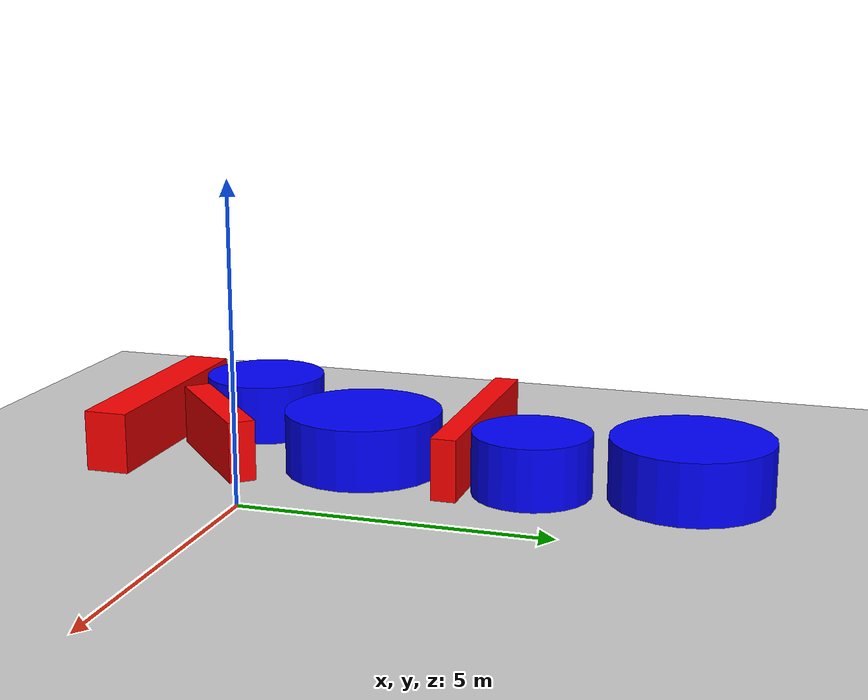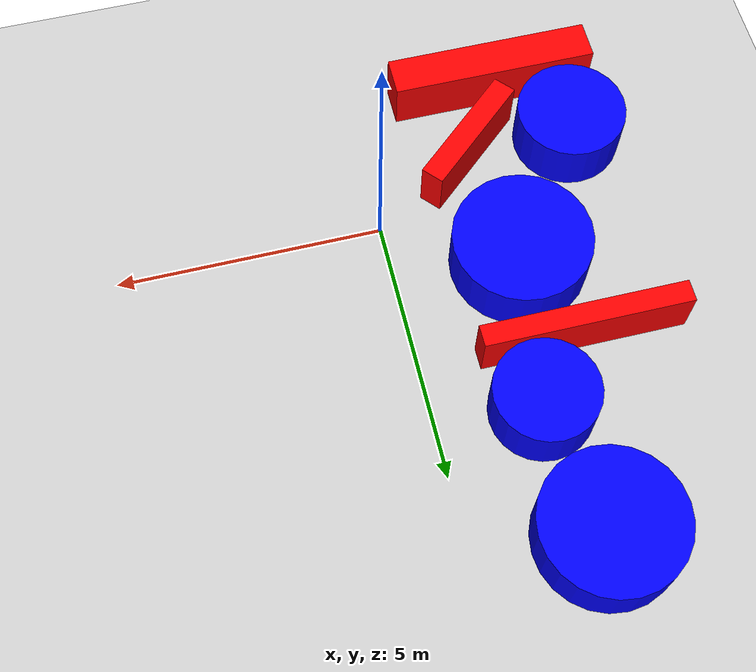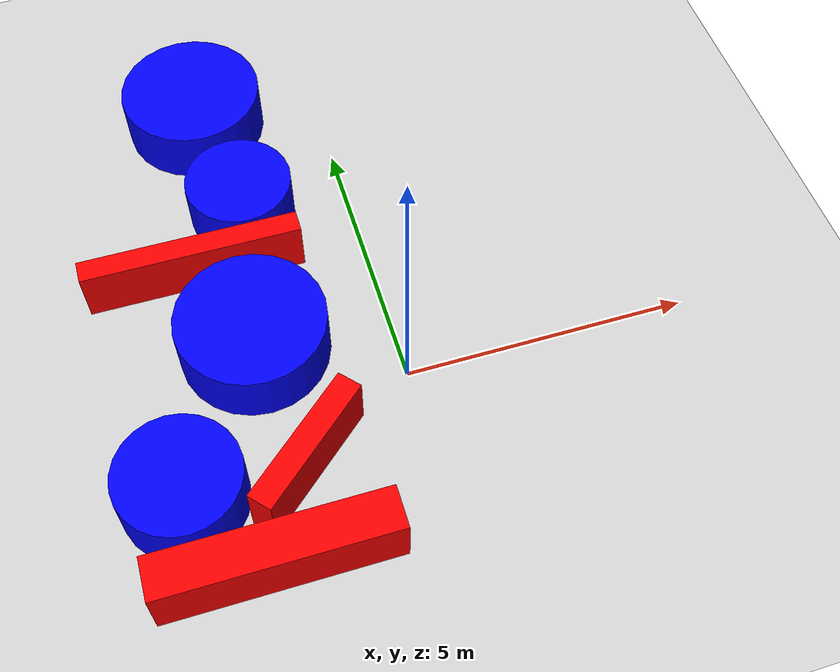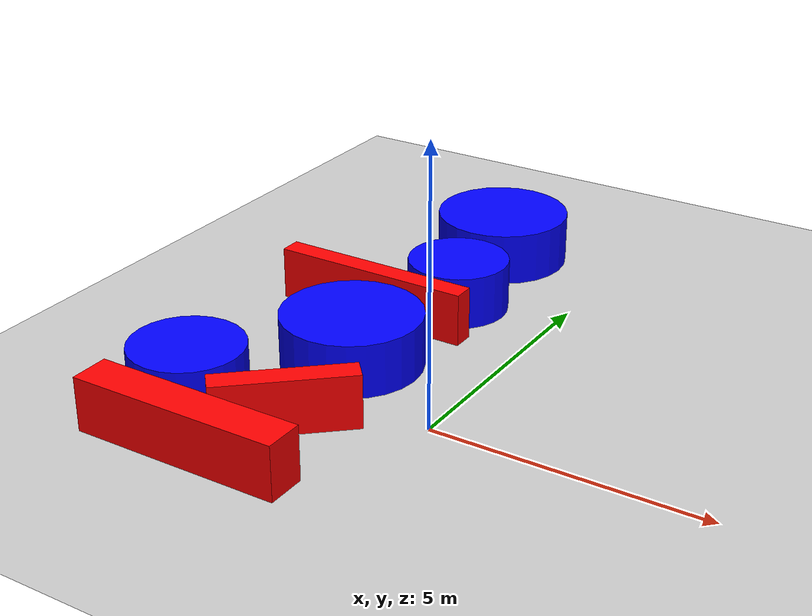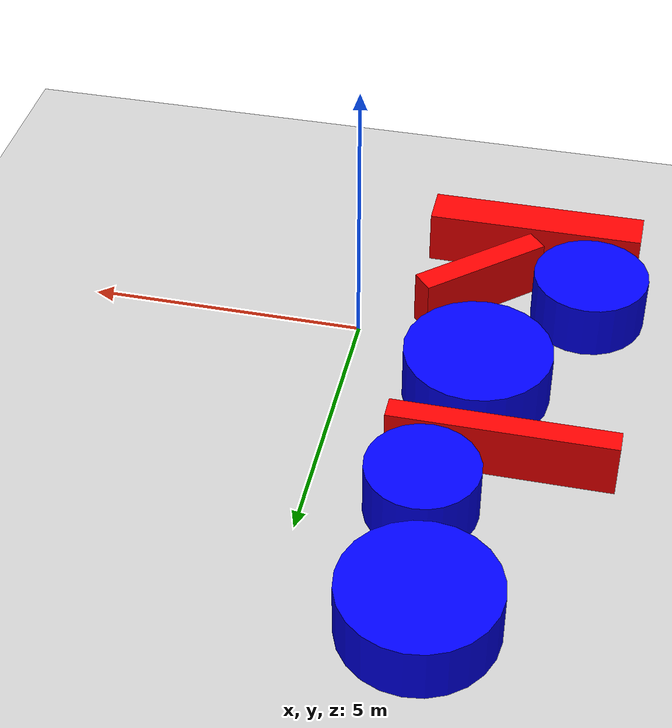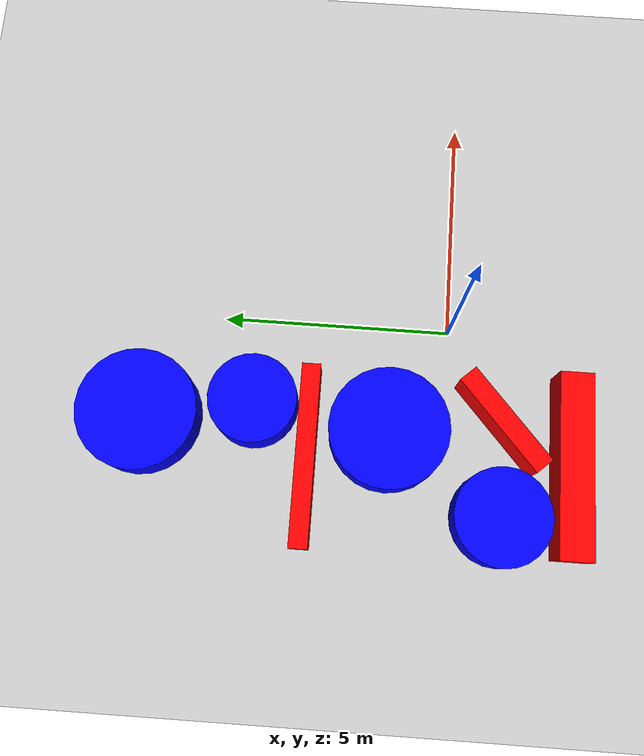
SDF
<sdf version="1.7">
 <world name="default">
  <light name="sun" type="directional">
   <pose>0 0 10 0 -0 0</pose>
   <diffuse>0.8 0.8 0.8 1</diffuse>
   <specular>0.2 0.2 0.2 1</specular>
   <attenuation>
    <range>1000</range>
    <constant>0.9</constant>
    <linear>0.01</linear>
    <quadratic>0.001</quadratic>
   </attenuation>
   <direction>-0.5 0.1 -0.9</direction>
   <spot><inner_angle>0</inner_angle><outer_angle>0</outer_angle><falloff>0</falloff></spot>
  </light>
  <model name="ground_plane">
   <static>1</static>
   <link name="link">
    <collision name="collision">
     <geometry><plane><normal>0 0 1</normal><size>100 100</size></plane></geometry>
     <surface>
      <contact><collide_bitmask>65535</collide_bitmask></contact>
      <friction><ode><mu>100</mu><mu2>50</mu2></ode></friction>
     </surface>
    </collision>
    <visual name="visual">
     <cast_shadows>0</cast_shadows>
     <geometry><plane><normal>0 0 1</normal><size>100 100</size></plane></geometry>
     <material>
      <script><uri>file://media/materials/scripts/gazebo.material</uri><name>Gazebo/Grey</name></script>
     </material>
    </visual>
   </link>
  </model>
  <gravity>0 0 -9.8</gravity>
  <magnetic_field>6e-06 2.3e-05 -4.2e-05</magnetic_field>
  <atmosphere type="adiabatic"/>
  <physics type="ode">
   <max_step_size>0.001</max_step_size>
   <real_time_factor>1</real_time_factor>
   <real_time_update_rate>1000</real_time_update_rate>
  </physics>
  <scene><ambient>0.4 0.4 0.4 1</ambient><background>0.7 0.7 0.7 1</background><shadows>1</shadows></scene>
  <spherical_coordinates>
   <surface_model>EARTH_WGS84</surface_model>
   <latitude_deg>0</latitude_deg>
   <longitude_deg>0</longitude_deg>
   <elevation>0</elevation>
   <heading_deg>0</heading_deg>
  </spherical_coordinates>
  <model name="unit_cylinder">
   <link name="link">
    <inertial>
     <mass>4.24922</mass>
     <inertia><ixx>1.48257</ixx><ixy>0</ixy><ixz>0</ixz><iyy>1.48257</iyy><iyz>0</iyz><izz>2.25694</izz></inertia>
    </inertial>
    <pose>0.087466 0.301017 0 0 -0 0</pose>
    <visual name="visual">
     <geometry><cylinder><radius>1.03067</radius><length>1</length></cylinder></geometry>
     <material>
      <script><name>Gazebo/Grey</name><uri>file://media/materials/scripts/gazebo.material</uri></script>
      <shader type="pixel"><normal_map>__default__</normal_map></shader>
      <ambient>0 0 1 1</ambient>
      <diffuse>0.7 0.7 0.7 1</diffuse>
      <specular>0.01 0.01 0.01 1</specular>
      <emissive>0 0 0 1</emissive>
     </material>
    </visual>
    <collision name="collision">
     <geometry><cylinder><radius>1.03067</radius><length>1</length></cylinder></geometry>
     <surface>
      <friction>
       <ode><mu>1</mu><mu2>1</mu2><fdir1>0 0 0</fdir1><slip1>0</slip1><slip2>0</slip2></ode>
       <torsional>
        <coefficient>1</coefficient>
        <patch_radius>0</patch_radius>
        <surface_radius>0</surface_radius>
        <use_patch_radius>1</use_patch_radius>
        <ode><slip>0</slip></ode>
       </torsional>
      </friction>
      <bounce><restitution_coefficient>0</restitution_coefficient><threshold>1e+06</threshold></bounce>
      <contact>
       <collide_without_contact>0</collide_without_contact>
       <collide_without_contact_bitmask>1</collide_without_contact_bitmask>
       <collide_bitmask>1</collide_bitmask>
       <ode>
        <soft_cfm>0</soft_cfm>
        <soft_erp>0.2</soft_erp>
        <kp>1e+13</kp>
        <kd>1</kd>
        <max_vel>0.01</max_vel>
        <min_depth>0</min_depth>
       </ode>
       <bullet>
        <split_impulse>1</split_impulse>
        <split_impulse_penetration_threshold>-0.01</split_impulse_penetration_threshold>
        <soft_cfm>0</soft_cfm>
        <soft_erp>0.2</soft_erp>
        <kp>1e+13</kp>
        <kd>1</kd>
       </bullet>
      </contact>
     </surface>
    </collision>
   </link>
   <link name="link_1">
    <inertial>
     <mass>1.56334</mass>
     <inertia><ixx>0.151743</ixx><ixy>0</ixy><ixz>0</ixz><iyy>2.06276</iyy><iyz>0</iyz><izz>1.95395</izz></inertia>
    </inertial>
    <pose>1.08712 4.46814 0 0 -0 0</pose>
    <visual name="visual">
     <geometry><box><size>3.85143 0.405906 1</size></box></geometry>
     <material>
      <lighting>1</lighting>
      <script><uri>file://media/materials/scripts/gazebo.material</uri><name>Gazebo/Grey</name></script>
      <shader type="pixel"><normal_map>__default__</normal_map></shader>
      <ambient>1 0 0 0</ambient>
      <diffuse>0.7 0.7 0.7 1</diffuse>
      <specular>0.01 0.01 0.01 1</specular>
      <emissive>0 0 0 1</emissive>
     </material>
    </visual>
    <collision name="collision">
     <geometry><box><size>3.85143 0.405906 1</size></box></geometry>
     <surface>
      <friction>
       <ode><mu>1</mu><mu2>1</mu2><fdir1>0 0 0</fdir1><slip1>0</slip1><slip2>0</slip2></ode>
       <torsional>
        <coefficient>1</coefficient>
        <patch_radius>0</patch_radius>
        <surface_radius>0</surface_radius>
        <use_patch_radius>1</use_patch_radius>
        <ode><slip>0</slip></ode>
       </torsional>
      </friction>
      <bounce><restitution_coefficient>0</restitution_coefficient><threshold>1e+06</threshold></bounce>
      <contact>
       <collide_without_contact>0</collide_without_contact>
       <collide_without_contact_bitmask>1</collide_without_contact_bitmask>
       <collide_bitmask>1</collide_bitmask>
       <ode>
        <soft_cfm>0</soft_cfm>
        <soft_erp>0.2</soft_erp>
        <kp>1e+13</kp>
        <kd>1</kd>
        <max_vel>0.01</max_vel>
        <min_depth>0</min_depth>
       </ode>
       <bullet>
        <split_impulse>1</split_impulse>
        <split_impulse_penetration_threshold>-0.01</split_impulse_penetration_threshold>
        <soft_cfm>0</soft_cfm>
        <soft_erp>0.2</soft_erp>
        <kp>1e+13</kp>
        <kd>1</kd>
       </bullet>
      </contact>
     </surface>
    </collision>
   </link>
   <link name="link_clone">
    <inertial>
     <mass>6.67404</mass>
     <inertia><ixx>3.34012</ixx><ixy>0</ixy><ixz>0</ixz><iyy>3.34012</iyy><iyz>0</iyz><izz>5.56789</izz></inertia>
    </inertial>
    <pose>1.76206 2.7359 0 0 -0 0</pose>
    <visual name="visual">
     <geometry><cylinder><radius>1.29171</radius><length>1</length></cylinder></geometry>
     <material>
      <script><name>Gazebo/Grey</name><uri>file://media/materials/scripts/gazebo.material</uri></script>
      <shader type="pixel"><normal_map>__default__</normal_map></shader>
      <ambient>0 0 1 0</ambient>
     </material>
    </visual>
    <collision name="collision">
     <geometry><cylinder><radius>1.29171</radius><length>1</length></cylinder></geometry>
     <surface>
      <friction>
       <ode><mu>1</mu><mu2>1</mu2><fdir1>0 0 0</fdir1><slip1>0</slip1><slip2>0</slip2></ode>
       <torsional>
        <coefficient>1</coefficient>
        <patch_radius>0</patch_radius>
        <surface_radius>0</surface_radius>
        <use_patch_radius>1</use_patch_radius>
        <ode><slip>0</slip></ode>
       </torsional>
      </friction>
      <bounce><restitution_coefficient>0</restitution_coefficient><threshold>1e+06</threshold></bounce>
      <contact>
       <collide_without_contact>0</collide_without_contact>
       <collide_without_contact_bitmask>1</collide_without_contact_bitmask>
       <collide_bitmask>1</collide_bitmask>
       <ode>
        <soft_cfm>0</soft_cfm>
        <soft_erp>0.2</soft_erp>
        <kp>1e+13</kp>
        <kd>1</kd>
        <max_vel>0.01</max_vel>
        <min_depth>0</min_depth>
       </ode>
       <bullet>
        <split_impulse>1</split_impulse>
        <split_impulse_penetration_threshold>-0.01</split_impulse_penetration_threshold>
        <soft_cfm>0</soft_cfm>
        <soft_erp>0.2</soft_erp>
        <kp>1e+13</kp>
        <kd>1</kd>
       </bullet>
      </contact>
     </surface>
    </collision>
   </link>
   <link name="link_clone_1">
    <inertial>
     <mass>3.64365</mass>
     <inertia><ixx>1.1334</ixx><ixy>0</ixy><ixz>0</ixz><iyy>1.1334</iyy><iyz>0</iyz><izz>1.65953</izz></inertia>
    </inertial>
    <pose>2.19163 5.67243 0 0 -0 0</pose>
    <visual name="visual">
     <geometry><cylinder><radius>0.95442</radius><length>1</length></cylinder></geometry>
     <material>
      <script><name>Gazebo/Grey</name><uri>file://media/materials/scripts/gazebo.material</uri></script>
      <shader type="pixel"><normal_map>__default__</normal_map></shader>
      <ambient>0 0 1 0</ambient>
      <diffuse>0.7 0.7 0.7 1</diffuse>
      <specular>0.01 0.01 0.01 1</specular>
      <emissive>0 0 0 1</emissive>
     </material>
    </visual>
    <collision name="collision">
     <geometry><cylinder><radius>0.95442</radius><length>1</length></cylinder></geometry>
     <surface>
      <friction>
       <ode><mu>1</mu><mu2>1</mu2><fdir1>0 0 0</fdir1><slip1>0</slip1><slip2>0</slip2></ode>
       <torsional>
        <coefficient>1</coefficient>
        <patch_radius>0</patch_radius>
        <surface_radius>0</surface_radius>
        <use_patch_radius>1</use_patch_radius>
        <ode><slip>0</slip></ode>
       </torsional>
      </friction>
      <bounce><restitution_coefficient>0</restitution_coefficient><threshold>1e+06</threshold></bounce>
      <contact>
       <collide_without_contact>0</collide_without_contact>
       <collide_without_contact_bitmask>1</collide_without_contact_bitmask>
       <collide_bitmask>1</collide_bitmask>
       <ode>
        <soft_cfm>0</soft_cfm>
        <soft_erp>0.2</soft_erp>
        <kp>1e+13</kp>
        <kd>1</kd>
        <max_vel>0.01</max_vel>
        <min_depth>0</min_depth>
       </ode>
       <bullet>
        <split_impulse>1</split_impulse>
        <split_impulse_penetration_threshold>-0.01</split_impulse_penetration_threshold>
        <soft_cfm>0</soft_cfm>
        <soft_erp>0.2</soft_erp>
        <kp>1e+13</kp>
        <kd>1</kd>
       </bullet>
      </contact>
     </surface>
    </collision>
   </link>
   <link name="link_clone_clone">
    <inertial>
     <mass>6.67404</mass>
     <inertia><ixx>3.34012</ixx><ixy>0</ixy><ixz>0</ixz><iyy>3.34012</iyy><iyz>0</iyz><izz>5.56789</izz></inertia>
    </inertial>
    <pose>1.79501 8.10665 0 0 -0 0</pose>
    <visual name="visual">
     <geometry><cylinder><radius>1.29171</radius><length>1</length></cylinder></geometry>
     <material>
      <script><name>Gazebo/Grey</name><uri>file://media/materials/scripts/gazebo.material</uri></script>
      <shader type="pixel"><normal_map>__default__</normal_map></shader>
      <ambient>0 0 1 0</ambient>
      <diffuse>0.7 0.7 0.7 1</diffuse>
      <specular>0.01 0.01 0.01 1</specular>
      <emissive>0 0 0 1</emissive>
     </material>
    </visual>
    <collision name="collision">
     <geometry><cylinder><radius>1.29171</radius><length>1</length></cylinder></geometry>
     <surface>
      <friction>
       <ode><mu>1</mu><mu2>1</mu2><fdir1>0 0 0</fdir1><slip1>0</slip1><slip2>0</slip2></ode>
       <torsional>
        <coefficient>1</coefficient>
        <patch_radius>0</patch_radius>
        <surface_radius>0</surface_radius>
        <use_patch_radius>1</use_patch_radius>
        <ode><slip>0</slip></ode>
       </torsional>
      </friction>
      <bounce><restitution_coefficient>0</restitution_coefficient><threshold>1e+06</threshold></bounce>
      <contact>
       <collide_without_contact>0</collide_without_contact>
       <collide_without_contact_bitmask>1</collide_without_contact_bitmask>
       <collide_bitmask>1</collide_bitmask>
       <ode>
        <soft_cfm>0</soft_cfm>
        <soft_erp>0.2</soft_erp>
        <kp>1e+13</kp>
        <kd>1</kd>
        <max_vel>0.01</max_vel>
        <min_depth>0</min_depth>
       </ode>
       <bullet>
        <split_impulse>1</split_impulse>
        <split_impulse_penetration_threshold>-0.01</split_impulse_penetration_threshold>
        <soft_cfm>0</soft_cfm>
        <soft_erp>0.2</soft_erp>
        <kp>1e+13</kp>
        <kd>1</kd>
       </bullet>
      </contact>
     </surface>
    </collision>
   </link>
   <static>0</static>
   <pose>-4.10479 -1.50503 0.5 0 -0 0</pose>
  </model>
  <model name="unit_box">
   <link name="link">
    <inertial>
     <mass>2.84995</mass>
     <inertia><ixx>0.362887</ixx><ixy>0</ixy><ixz>0</ixz><iyy>3.89099</iyy><iyz>0</iyz><izz>3.77888</izz></inertia>
    </inertial>
    <visual name="visual">
     <geometry><box><size>3.92217 0.726618 1</size></box></geometry>
     <material>
      <script><name>Gazebo/Grey</name><uri>file://media/materials/scripts/gazebo.material</uri></script>
      <shader type="pixel"><normal_map>__default__</normal_map></shader>
      <ambient>1 0 0 1</ambient>
      <diffuse>0.7 0.7 0.7 1</diffuse>
      <specular>0.01 0.01 0.01 1</specular>
      <emissive>0 0 0 1</emissive>
     </material>
    </visual>
    <collision name="collision">
     <geometry><box><size>3.92217 0.726618 1</size></box></geometry>
     <surface>
      <friction>
       <ode><mu>1</mu><mu2>1</mu2><fdir1>0 0 0</fdir1><slip1>0</slip1><slip2>0</slip2></ode>
       <torsional>
        <coefficient>1</coefficient>
        <patch_radius>0</patch_radius>
        <surface_radius>0</surface_radius>
        <use_patch_radius>1</use_patch_radius>
        <ode><slip>0</slip></ode>
       </torsional>
      </friction>
      <bounce><restitution_coefficient>0</restitution_coefficient><threshold>1e+06</threshold></bounce>
      <contact>
       <collide_without_contact>0</collide_without_contact>
       <collide_without_contact_bitmask>1</collide_without_contact_bitmask>
       <collide_bitmask>1</collide_bitmask>
       <ode>
        <soft_cfm>0</soft_cfm>
        <soft_erp>0.2</soft_erp>
        <kp>1e+13</kp>
        <kd>1</kd>
        <max_vel>0.01</max_vel>
        <min_depth>0</min_depth>
       </ode>
       <bullet>
        <split_impulse>1</split_impulse>
        <split_impulse_penetration_threshold>-0.01</split_impulse_penetration_threshold>
        <soft_cfm>0</soft_cfm>
        <soft_erp>0.2</soft_erp>
        <kp>1e+13</kp>
        <kd>1</kd>
       </bullet>
      </contact>
     </surface>
    </collision>
   </link>
   <link name="link_clone">
    <inertial>
     <mass>1.10815</mass>
     <inertia>
      <ixx>0.110563</ixx>
      <ixy>0</ixy>
      <ixz>0</ixz>
      <iyy>0.667191</iyy>
      <iyz>0</iyz>
      <izz>0.593062</izz>
     </inertia>
    </inertial>
    <pose>0.844034 1.49612 0 0 -0 0.726536</pose>
    <visual name="visual">
     <geometry><box><size>2.49498 0.444147 1</size></box></geometry>
     <material>
      <script><name>Gazebo/Grey</name><uri>file://media/materials/scripts/gazebo.material</uri></script>
      <shader type="pixel"><normal_map>__default__</normal_map></shader>
      <ambient>1 0 0 0</ambient>
     </material>
    </visual>
    <collision name="collision">
     <geometry><box><size>2.49498 0.444147 1</size></box></geometry>
     <surface>
      <friction>
       <ode><mu>1</mu><mu2>1</mu2><fdir1>0 0 0</fdir1><slip1>0</slip1><slip2>0</slip2></ode>
       <torsional>
        <coefficient>1</coefficient>
        <patch_radius>0</patch_radius>
        <surface_radius>0</surface_radius>
        <use_patch_radius>1</use_patch_radius>
        <ode><slip>0</slip></ode>
       </torsional>
      </friction>
      <bounce><restitution_coefficient>0</restitution_coefficient><threshold>1e+06</threshold></bounce>
      <contact>
       <collide_without_contact>0</collide_without_contact>
       <collide_without_contact_bitmask>1</collide_without_contact_bitmask>
       <collide_bitmask>1</collide_bitmask>
       <ode>
        <soft_cfm>0</soft_cfm>
        <soft_erp>0.2</soft_erp>
        <kp>1e+13</kp>
        <kd>1</kd>
        <max_vel>0.01</max_vel>
        <min_depth>0</min_depth>
       </ode>
       <bullet>
        <split_impulse>1</split_impulse>
        <split_impulse_penetration_threshold>-0.01</split_impulse_penetration_threshold>
        <soft_cfm>0</soft_cfm>
        <soft_erp>0.2</soft_erp>
        <kp>1e+13</kp>
        <kd>1</kd>
       </bullet>
      </contact>
     </surface>
    </collision>
   </link>
   <static>0</static>
   <pose>-2.84624 -2.70065 0.5 0 -0 0</pose>
  </model>
 </world>
</sdf>
